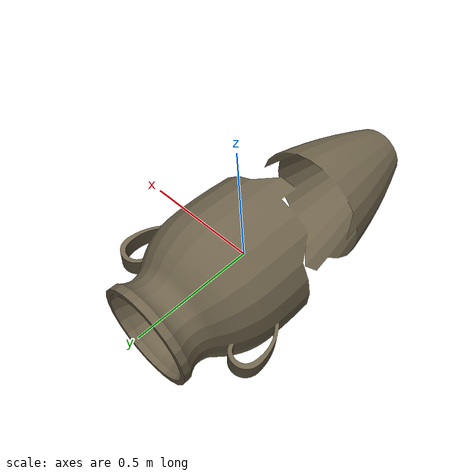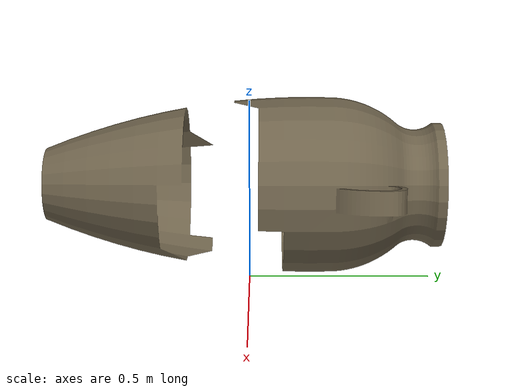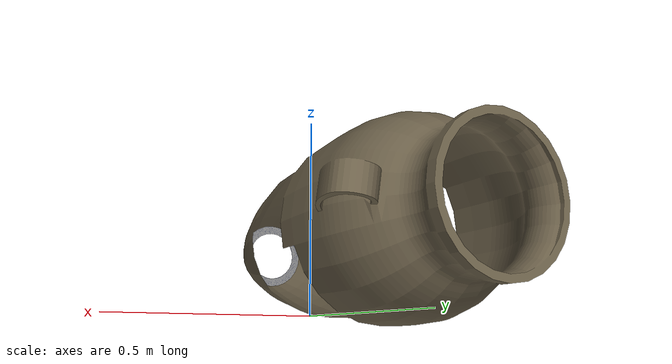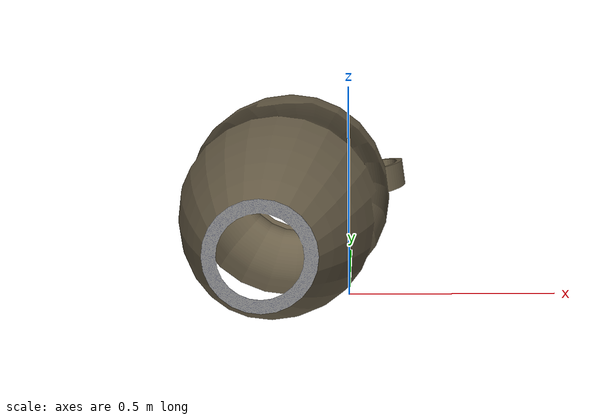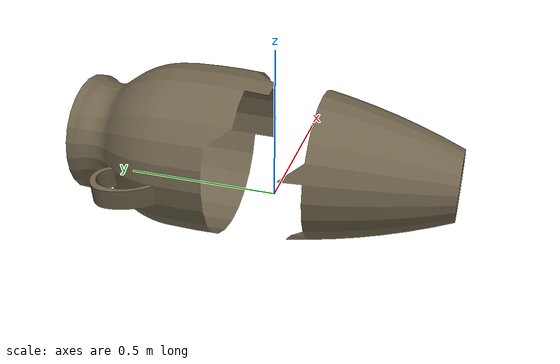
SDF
<?xml version='1.0'?>
<sdf version='1.6'>
  <model name='vase_large_2_broken'>
    <link name='link_4'>

      <visual name='visual'>
        <pose frame=''>0 0 0 0 -0 0</pose>
        <geometry>
          <mesh>
            <uri>model://vase_large_2_broken/meshes/vase_large_2_broken.dae</uri>
            <scale>1 1 1</scale>
          </mesh>
        </geometry>
           <material>
          <script>
            <uri>model://vase_large_2_broken/materials/scripts</uri>
            <uri>model://vase_large_2_broken/materials/textures</uri>
            <name>vase_pattern2</name>
          </script>
        </material>
        <cast_shadows>1</cast_shadows>
        <transparency>0</transparency>
      </visual>
      <collision name='collision'>
        <laser_retro>0</laser_retro>
        <max_contacts>10</max_contacts>
        <pose frame=''>0 0 0 0 -0 0</pose>
        <geometry>
          <mesh>
            <uri>model://vase_large_2_broken/meshes/vase_large_2_broken.dae</uri>
            <scale>1 1 1</scale>
          </mesh>
        </geometry>

      </collision>
    </link>
    <static>1</static>
    <allow_auto_disable>1</allow_auto_disable>
  </model>
</sdf>
